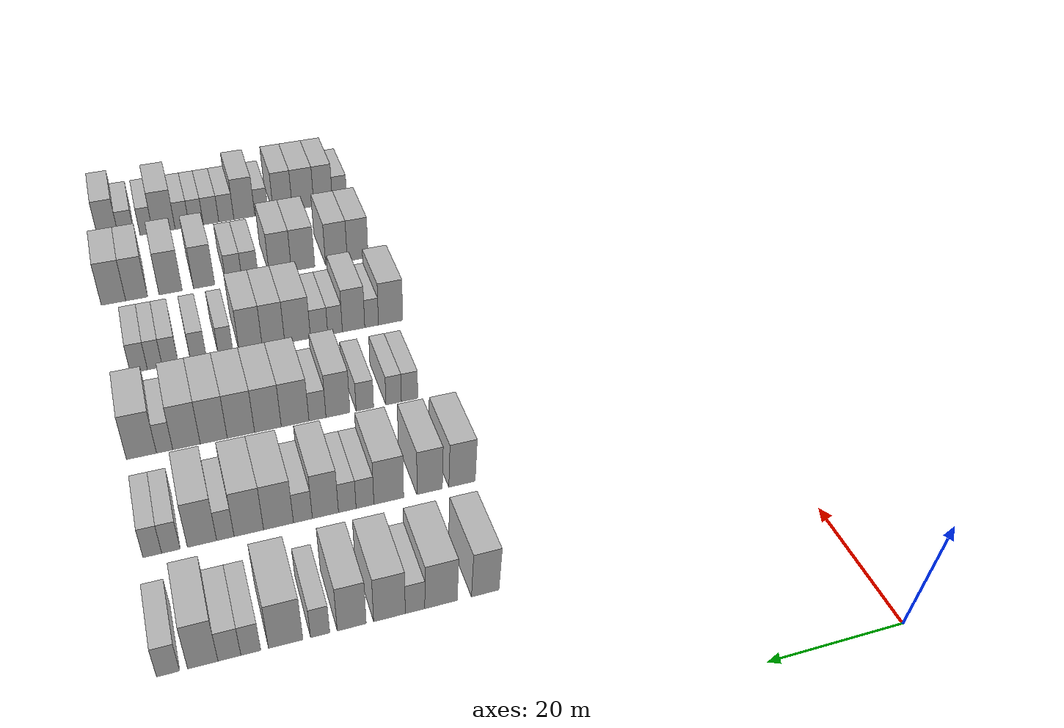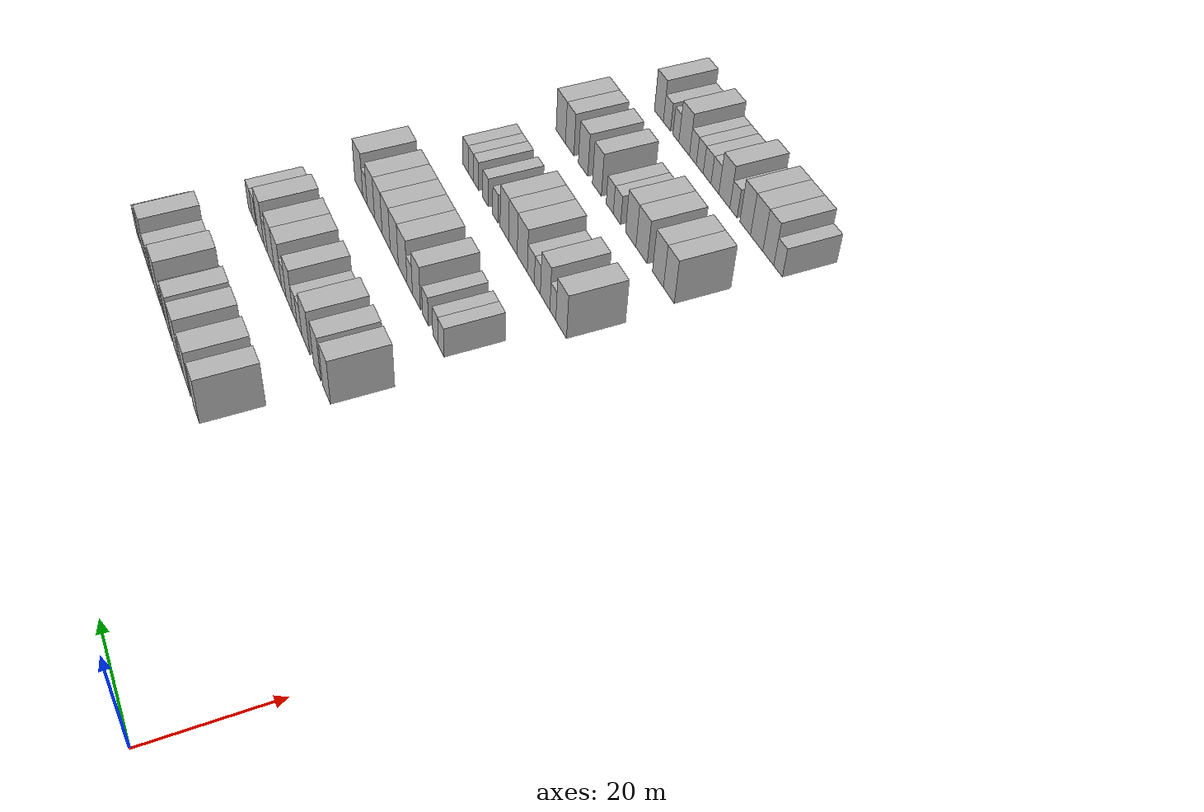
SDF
<sdf version="1.6">
 <world name="default">
  <model name="building_91">
   <static>1</static>
   <pose>25.0000 50.7786 0 0.000000 0.000000 0.000000</pose>
   <link name="link">
    <pose>0 0 4.50 0 0 0</pose>
    <collision name="collision"><geometry><box><size>10.0000 3.8769 9.0000</size></box></geometry></collision>
    <visual name="visual">
     <cast_shadows>0</cast_shadows>
     <geometry><box><size>10.0000 3.8769 9.0000</size></box></geometry>
     <material>
      <script>
       <uri>model://HANNAS_wall/materials/scripts</uri>
       <uri>model://HANNAS_wall/materials/textures</uri>
       <name>vrc/HANNAS_wall</name>
      </script>
     </material>
    </visual>
   </link>
  </model>
  <model name="building_92">
   <static>1</static>
   <pose>25.0000 56.9669 0 0.000000 0.000000 0.000000</pose>
   <link name="link">
    <pose>0 0 4.50 0 0 0</pose>
    <collision name="collision"><geometry><box><size>10.0000 4.4996 9.0000</size></box></geometry></collision>
    <visual name="visual">
     <cast_shadows>0</cast_shadows>
     <geometry><box><size>10.0000 4.4996 9.0000</size></box></geometry>
     <material>
      <script>
       <uri>model://HANNAS_wall/materials/scripts</uri>
       <uri>model://HANNAS_wall/materials/textures</uri>
       <name>vrc/HANNAS_wall</name>
      </script>
     </material>
    </visual>
   </link>
  </model>
  <model name="building_93">
   <static>1</static>
   <pose>25.0000 60.5590 0 0.000000 0.000000 0.000000</pose>
   <link name="link">
    <pose>0 0 3.00 0 0 0</pose>
    <collision name="collision"><geometry><box><size>10.0000 2.6848 6.0000</size></box></geometry></collision>
    <visual name="visual">
     <cast_shadows>0</cast_shadows>
     <geometry><box><size>10.0000 2.6848 6.0000</size></box></geometry>
     <material>
      <script>
       <uri>model://HANNAS_wall/materials/scripts</uri>
       <uri>model://HANNAS_wall/materials/textures</uri>
       <name>vrc/HANNAS_wall</name>
      </script>
     </material>
    </visual>
   </link>
  </model>
  <model name="building_94">
   <static>1</static>
   <pose>25.0000 64.0474 0 0.000000 0.000000 0.000000</pose>
   <link name="link">
    <pose>0 0 4.50 0 0 0</pose>
    <collision name="collision"><geometry><box><size>10.0000 4.2919 9.0000</size></box></geometry></collision>
    <visual name="visual">
     <cast_shadows>0</cast_shadows>
     <geometry><box><size>10.0000 4.2919 9.0000</size></box></geometry>
     <material>
      <script>
       <uri>model://HANNAS_wall/materials/scripts</uri>
       <uri>model://HANNAS_wall/materials/textures</uri>
       <name>vrc/HANNAS_wall</name>
      </script>
     </material>
    </visual>
   </link>
  </model>
  <model name="building_95">
   <static>1</static>
   <pose>25.0000 69.1278 0 0.000000 0.000000 0.000000</pose>
   <link name="link">
    <pose>0 0 4.50 0 0 0</pose>
    <collision name="collision"><geometry><box><size>10.0000 3.8688 9.0000</size></box></geometry></collision>
    <visual name="visual">
     <cast_shadows>0</cast_shadows>
     <geometry><box><size>10.0000 3.8688 9.0000</size></box></geometry>
     <material>
      <script>
       <uri>model://HANNAS_wall/materials/scripts</uri>
       <uri>model://HANNAS_wall/materials/textures</uri>
       <name>vrc/HANNAS_wall</name>
      </script>
     </material>
    </visual>
   </link>
  </model>
  <model name="building_96">
   <static>1</static>
   <pose>25.0000 73.3292 0 0.000000 0.000000 0.000000</pose>
   <link name="link">
    <pose>0 0 3.00 0 0 0</pose>
    <collision name="collision"><geometry><box><size>10.0000 2.5341 6.0000</size></box></geometry></collision>
    <visual name="visual">
     <cast_shadows>0</cast_shadows>
     <geometry><box><size>10.0000 2.5341 6.0000</size></box></geometry>
     <material>
      <script>
       <uri>model://HANNAS_wall/materials/scripts</uri>
       <uri>model://HANNAS_wall/materials/textures</uri>
       <name>vrc/HANNAS_wall</name>
      </script>
     </material>
    </visual>
   </link>
  </model>
  <model name="building_97">
   <static>1</static>
   <pose>25.0000 77.8396 0 0.000000 0.000000 0.000000</pose>
   <link name="link">
    <pose>0 0 4.50 0 0 0</pose>
    <collision name="collision"><geometry><box><size>10.0000 4.4866 9.0000</size></box></geometry></collision>
    <visual name="visual">
     <cast_shadows>0</cast_shadows>
     <geometry><box><size>10.0000 4.4866 9.0000</size></box></geometry>
     <material>
      <script>
       <uri>model://HANNAS_wall/materials/scripts</uri>
       <uri>model://HANNAS_wall/materials/textures</uri>
       <name>vrc/HANNAS_wall</name>
      </script>
     </material>
    </visual>
   </link>
  </model>
  <model name="building_98">
   <static>1</static>
   <pose>25.0000 82.3588 0 0.000000 0.000000 0.000000</pose>
   <link name="link">
    <pose>0 0 3.00 0 0 0</pose>
    <collision name="collision"><geometry><box><size>10.0000 2.5518 6.0000</size></box></geometry></collision>
    <visual name="visual">
     <cast_shadows>0</cast_shadows>
     <geometry><box><size>10.0000 2.5518 6.0000</size></box></geometry>
     <material>
      <script>
       <uri>model://HANNAS_wall/materials/scripts</uri>
       <uri>model://HANNAS_wall/materials/textures</uri>
       <name>vrc/HANNAS_wall</name>
      </script>
     </material>
    </visual>
   </link>
  </model>
  <model name="building_99">
   <static>1</static>
   <pose>25.0000 85.0927 0 0.000000 0.000000 0.000000</pose>
   <link name="link">
    <pose>0 0 3.00 0 0 0</pose>
    <collision name="collision"><geometry><box><size>10.0000 2.9160 6.0000</size></box></geometry></collision>
    <visual name="visual">
     <cast_shadows>0</cast_shadows>
     <geometry><box><size>10.0000 2.9160 6.0000</size></box></geometry>
     <material>
      <script>
       <uri>model://HANNAS_wall/materials/scripts</uri>
       <uri>model://HANNAS_wall/materials/textures</uri>
       <name>vrc/HANNAS_wall</name>
      </script>
     </material>
    </visual>
   </link>
  </model>
  <model name="building_100">
   <static>1</static>
   <pose>25.0000 88.4662 0 0.000000 0.000000 0.000000</pose>
   <link name="link">
    <pose>0 0 4.50 0 0 0</pose>
    <collision name="collision"><geometry><box><size>10.0000 3.8309 9.0000</size></box></geometry></collision>
    <visual name="visual">
     <cast_shadows>0</cast_shadows>
     <geometry><box><size>10.0000 3.8309 9.0000</size></box></geometry>
     <material>
      <script>
       <uri>model://HANNAS_wall/materials/scripts</uri>
       <uri>model://HANNAS_wall/materials/textures</uri>
       <name>vrc/HANNAS_wall</name>
      </script>
     </material>
    </visual>
   </link>
  </model>
  <model name="building_101">
   <static>1</static>
   <pose>25.0000 92.8203 0 0.000000 0.000000 0.000000</pose>
   <link name="link">
    <pose>0 0 3.00 0 0 0</pose>
    <collision name="collision"><geometry><box><size>10.0000 2.8774 6.0000</size></box></geometry></collision>
    <visual name="visual">
     <cast_shadows>0</cast_shadows>
     <geometry><box><size>10.0000 2.8774 6.0000</size></box></geometry>
     <material>
      <script>
       <uri>model://HANNAS_wall/materials/scripts</uri>
       <uri>model://HANNAS_wall/materials/textures</uri>
       <name>vrc/HANNAS_wall</name>
      </script>
     </material>
    </visual>
   </link>
  </model>
  <model name="building_254">
   <static>1</static>
   <pose>44.0000 47.7651 0 0.000000 0.000000 0.000000</pose>
   <link name="link">
    <pose>0 0 4.50 0 0 0</pose>
    <collision name="collision"><geometry><box><size>10.0000 4.0599 9.0000</size></box></geometry></collision>
    <visual name="visual">
     <cast_shadows>0</cast_shadows>
     <geometry><box><size>10.0000 4.0599 9.0000</size></box></geometry>
     <material>
      <script>
       <uri>model://HANNAS_wall/materials/scripts</uri>
       <uri>model://HANNAS_wall/materials/textures</uri>
       <name>vrc/HANNAS_wall</name>
      </script>
     </material>
    </visual>
   </link>
  </model>
  <model name="building_255">
   <static>1</static>
   <pose>44.0000 52.7390 0 0.000000 0.000000 0.000000</pose>
   <link name="link">
    <pose>0 0 4.50 0 0 0</pose>
    <collision name="collision"><geometry><box><size>10.0000 3.8878 9.0000</size></box></geometry></collision>
    <visual name="visual">
     <cast_shadows>0</cast_shadows>
     <geometry><box><size>10.0000 3.8878 9.0000</size></box></geometry>
     <material>
      <script>
       <uri>model://HANNAS_wall/materials/scripts</uri>
       <uri>model://HANNAS_wall/materials/textures</uri>
       <name>vrc/HANNAS_wall</name>
      </script>
     </material>
    </visual>
   </link>
  </model>
  <model name="building_256">
   <static>1</static>
   <pose>44.0000 58.9108 0 0.000000 0.000000 0.000000</pose>
   <link name="link">
    <pose>0 0 4.50 0 0 0</pose>
    <collision name="collision"><geometry><box><size>10.0000 4.4558 9.0000</size></box></geometry></collision>
    <visual name="visual">
     <cast_shadows>0</cast_shadows>
     <geometry><box><size>10.0000 4.4558 9.0000</size></box></geometry>
     <material>
      <script>
       <uri>model://HANNAS_wall/materials/scripts</uri>
       <uri>model://HANNAS_wall/materials/textures</uri>
       <name>vrc/HANNAS_wall</name>
      </script>
     </material>
    </visual>
   </link>
  </model>
  <model name="building_257">
   <static>1</static>
   <pose>44.0000 62.4589 0 0.000000 0.000000 0.000000</pose>
   <link name="link">
    <pose>0 0 3.00 0 0 0</pose>
    <collision name="collision"><geometry><box><size>10.0000 2.6403 6.0000</size></box></geometry></collision>
    <visual name="visual">
     <cast_shadows>0</cast_shadows>
     <geometry><box><size>10.0000 2.6403 6.0000</size></box></geometry>
     <material>
      <script>
       <uri>model://HANNAS_wall/materials/scripts</uri>
       <uri>model://HANNAS_wall/materials/textures</uri>
       <name>vrc/HANNAS_wall</name>
      </script>
     </material>
    </visual>
   </link>
  </model>
  <model name="building_258">
   <static>1</static>
   <pose>44.0000 65.0782 0 0.000000 0.000000 0.000000</pose>
   <link name="link">
    <pose>0 0 3.00 0 0 0</pose>
    <collision name="collision"><geometry><box><size>10.0000 2.5983 6.0000</size></box></geometry></collision>
    <visual name="visual">
     <cast_shadows>0</cast_shadows>
     <geometry><box><size>10.0000 2.5983 6.0000</size></box></geometry>
     <material>
      <script>
       <uri>model://HANNAS_wall/materials/scripts</uri>
       <uri>model://HANNAS_wall/materials/textures</uri>
       <name>vrc/HANNAS_wall</name>
      </script>
     </material>
    </visual>
   </link>
  </model>
  <model name="building_259">
   <static>1</static>
   <pose>44.0000 68.2817 0 0.000000 0.000000 0.000000</pose>
   <link name="link">
    <pose>0 0 4.50 0 0 0</pose>
    <collision name="collision"><geometry><box><size>10.0000 3.8088 9.0000</size></box></geometry></collision>
    <visual name="visual">
     <cast_shadows>0</cast_shadows>
     <geometry><box><size>10.0000 3.8088 9.0000</size></box></geometry>
     <material>
      <script>
       <uri>model://HANNAS_wall/materials/scripts</uri>
       <uri>model://HANNAS_wall/materials/textures</uri>
       <name>vrc/HANNAS_wall</name>
      </script>
     </material>
    </visual>
   </link>
  </model>
  <model name="building_260">
   <static>1</static>
   <pose>44.0000 71.5533 0 0.000000 0.000000 0.000000</pose>
   <link name="link">
    <pose>0 0 3.00 0 0 0</pose>
    <collision name="collision"><geometry><box><size>10.0000 2.7343 6.0000</size></box></geometry></collision>
    <visual name="visual">
     <cast_shadows>0</cast_shadows>
     <geometry><box><size>10.0000 2.7343 6.0000</size></box></geometry>
     <material>
      <script>
       <uri>model://HANNAS_wall/materials/scripts</uri>
       <uri>model://HANNAS_wall/materials/textures</uri>
       <name>vrc/HANNAS_wall</name>
      </script>
     </material>
    </visual>
   </link>
  </model>
  <model name="building_261">
   <static>1</static>
   <pose>44.0000 75.0664 0 0.000000 0.000000 0.000000</pose>
   <link name="link">
    <pose>0 0 4.50 0 0 0</pose>
    <collision name="collision"><geometry><box><size>10.0000 4.2920 9.0000</size></box></geometry></collision>
    <visual name="visual">
     <cast_shadows>0</cast_shadows>
     <geometry><box><size>10.0000 4.2920 9.0000</size></box></geometry>
     <material>
      <script>
       <uri>model://HANNAS_wall/materials/scripts</uri>
       <uri>model://HANNAS_wall/materials/textures</uri>
       <name>vrc/HANNAS_wall</name>
      </script>
     </material>
    </visual>
   </link>
  </model>
  <model name="building_262">
   <static>1</static>
   <pose>44.0000 79.2994 0 0.000000 0.000000 0.000000</pose>
   <link name="link">
    <pose>0 0 4.50 0 0 0</pose>
    <collision name="collision"><geometry><box><size>10.0000 4.1741 9.0000</size></box></geometry></collision>
    <visual name="visual">
     <cast_shadows>0</cast_shadows>
     <geometry><box><size>10.0000 4.1741 9.0000</size></box></geometry>
     <material>
      <script>
       <uri>model://HANNAS_wall/materials/scripts</uri>
       <uri>model://HANNAS_wall/materials/textures</uri>
       <name>vrc/HANNAS_wall</name>
      </script>
     </material>
    </visual>
   </link>
  </model>
  <model name="building_263">
   <static>1</static>
   <pose>44.0000 82.6092 0 0.000000 0.000000 0.000000</pose>
   <link name="link">
    <pose>0 0 3.00 0 0 0</pose>
    <collision name="collision"><geometry><box><size>10.0000 2.4455 6.0000</size></box></geometry></collision>
    <visual name="visual">
     <cast_shadows>0</cast_shadows>
     <geometry><box><size>10.0000 2.4455 6.0000</size></box></geometry>
     <material>
      <script>
       <uri>model://HANNAS_wall/materials/scripts</uri>
       <uri>model://HANNAS_wall/materials/textures</uri>
       <name>vrc/HANNAS_wall</name>
      </script>
     </material>
    </visual>
   </link>
  </model>
  <model name="building_264">
   <static>1</static>
   <pose>44.0000 85.8700 0 0.000000 0.000000 0.000000</pose>
   <link name="link">
    <pose>0 0 4.50 0 0 0</pose>
    <collision name="collision"><geometry><box><size>10.0000 4.0760 9.0000</size></box></geometry></collision>
    <visual name="visual">
     <cast_shadows>0</cast_shadows>
     <geometry><box><size>10.0000 4.0760 9.0000</size></box></geometry>
     <material>
      <script>
       <uri>model://HANNAS_wall/materials/scripts</uri>
       <uri>model://HANNAS_wall/materials/textures</uri>
       <name>vrc/HANNAS_wall</name>
      </script>
     </material>
    </visual>
   </link>
  </model>
  <model name="building_265">
   <static>1</static>
   <pose>44.0000 90.1796 0 0.000000 0.000000 0.000000</pose>
   <link name="link">
    <pose>0 0 3.00 0 0 0</pose>
    <collision name="collision"><geometry><box><size>10.0000 2.5433 6.0000</size></box></geometry></collision>
    <visual name="visual">
     <cast_shadows>0</cast_shadows>
     <geometry><box><size>10.0000 2.5433 6.0000</size></box></geometry>
     <material>
      <script>
       <uri>model://HANNAS_wall/materials/scripts</uri>
       <uri>model://HANNAS_wall/materials/textures</uri>
       <name>vrc/HANNAS_wall</name>
      </script>
     </material>
    </visual>
   </link>
  </model>
  <model name="building_266">
   <static>1</static>
   <pose>44.0000 92.7269 0 0.000000 0.000000 0.000000</pose>
   <link name="link">
    <pose>0 0 3.00 0 0 0</pose>
    <collision name="collision"><geometry><box><size>10.0000 2.5513 6.0000</size></box></geometry></collision>
    <visual name="visual">
     <cast_shadows>0</cast_shadows>
     <geometry><box><size>10.0000 2.5513 6.0000</size></box></geometry>
     <material>
      <script>
       <uri>model://HANNAS_wall/materials/scripts</uri>
       <uri>model://HANNAS_wall/materials/textures</uri>
       <name>vrc/HANNAS_wall</name>
      </script>
     </material>
    </visual>
   </link>
  </model>
  <model name="building_424">
   <static>1</static>
   <pose>63.0000 50.2790 0 0.000000 0.000000 0.000000</pose>
   <link name="link">
    <pose>0 0 3.00 0 0 0</pose>
    <collision name="collision"><geometry><box><size>10.0000 2.6736 6.0000</size></box></geometry></collision>
    <visual name="visual">
     <cast_shadows>0</cast_shadows>
     <geometry><box><size>10.0000 2.6736 6.0000</size></box></geometry>
     <material>
      <script>
       <uri>model://HANNAS_wall/materials/scripts</uri>
       <uri>model://HANNAS_wall/materials/textures</uri>
       <name>vrc/HANNAS_wall</name>
      </script>
     </material>
    </visual>
   </link>
  </model>
  <model name="building_425">
   <static>1</static>
   <pose>63.0000 52.8921 0 0.000000 0.000000 0.000000</pose>
   <link name="link">
    <pose>0 0 3.00 0 0 0</pose>
    <collision name="collision"><geometry><box><size>10.0000 2.5526 6.0000</size></box></geometry></collision>
    <visual name="visual">
     <cast_shadows>0</cast_shadows>
     <geometry><box><size>10.0000 2.5526 6.0000</size></box></geometry>
     <material>
      <script>
       <uri>model://HANNAS_wall/materials/scripts</uri>
       <uri>model://HANNAS_wall/materials/textures</uri>
       <name>vrc/HANNAS_wall</name>
      </script>
     </material>
    </visual>
   </link>
  </model>
  <model name="building_426">
   <static>1</static>
   <pose>63.0000 57.5868 0 0.000000 0.000000 0.000000</pose>
   <link name="link">
    <pose>0 0 3.00 0 0 0</pose>
    <collision name="collision"><geometry><box><size>10.0000 2.8367 6.0000</size></box></geometry></collision>
    <visual name="visual">
     <cast_shadows>0</cast_shadows>
     <geometry><box><size>10.0000 2.8367 6.0000</size></box></geometry>
     <material>
      <script>
       <uri>model://HANNAS_wall/materials/scripts</uri>
       <uri>model://HANNAS_wall/materials/textures</uri>
       <name>vrc/HANNAS_wall</name>
      </script>
     </material>
    </visual>
   </link>
  </model>
  <model name="building_427">
   <static>1</static>
   <pose>63.0000 61.9306 0 0.000000 0.000000 0.000000</pose>
   <link name="link">
    <pose>0 0 4.50 0 0 0</pose>
    <collision name="collision"><geometry><box><size>10.0000 3.8510 9.0000</size></box></geometry></collision>
    <visual name="visual">
     <cast_shadows>0</cast_shadows>
     <geometry><box><size>10.0000 3.8510 9.0000</size></box></geometry>
     <material>
      <script>
       <uri>model://HANNAS_wall/materials/scripts</uri>
       <uri>model://HANNAS_wall/materials/textures</uri>
       <name>vrc/HANNAS_wall</name>
      </script>
     </material>
    </visual>
   </link>
  </model>
  <model name="building_428">
   <static>1</static>
   <pose>63.0000 65.2110 0 0.000000 0.000000 0.000000</pose>
   <link name="link">
    <pose>0 0 3.00 0 0 0</pose>
    <collision name="collision"><geometry><box><size>10.0000 2.7098 6.0000</size></box></geometry></collision>
    <visual name="visual">
     <cast_shadows>0</cast_shadows>
     <geometry><box><size>10.0000 2.7098 6.0000</size></box></geometry>
     <material>
      <script>
       <uri>model://HANNAS_wall/materials/scripts</uri>
       <uri>model://HANNAS_wall/materials/textures</uri>
       <name>vrc/HANNAS_wall</name>
      </script>
     </material>
    </visual>
   </link>
  </model>
  <model name="building_429">
   <static>1</static>
   <pose>63.0000 68.7492 0 0.000000 0.000000 0.000000</pose>
   <link name="link">
    <pose>0 0 4.50 0 0 0</pose>
    <collision name="collision"><geometry><box><size>10.0000 4.3666 9.0000</size></box></geometry></collision>
    <visual name="visual">
     <cast_shadows>0</cast_shadows>
     <geometry><box><size>10.0000 4.3666 9.0000</size></box></geometry>
     <material>
      <script>
       <uri>model://HANNAS_wall/materials/scripts</uri>
       <uri>model://HANNAS_wall/materials/textures</uri>
       <name>vrc/HANNAS_wall</name>
      </script>
     </material>
    </visual>
   </link>
  </model>
  <model name="building_430">
   <static>1</static>
   <pose>63.0000 73.0215 0 0.000000 0.000000 0.000000</pose>
   <link name="link">
    <pose>0 0 4.50 0 0 0</pose>
    <collision name="collision"><geometry><box><size>10.0000 4.1780 9.0000</size></box></geometry></collision>
    <visual name="visual">
     <cast_shadows>0</cast_shadows>
     <geometry><box><size>10.0000 4.1780 9.0000</size></box></geometry>
     <material>
      <script>
       <uri>model://HANNAS_wall/materials/scripts</uri>
       <uri>model://HANNAS_wall/materials/textures</uri>
       <name>vrc/HANNAS_wall</name>
      </script>
     </material>
    </visual>
   </link>
  </model>
  <model name="building_431">
   <static>1</static>
   <pose>63.0000 77.2236 0 0.000000 0.000000 0.000000</pose>
   <link name="link">
    <pose>0 0 4.50 0 0 0</pose>
    <collision name="collision"><geometry><box><size>10.0000 4.2261 9.0000</size></box></geometry></collision>
    <visual name="visual">
     <cast_shadows>0</cast_shadows>
     <geometry><box><size>10.0000 4.2261 9.0000</size></box></geometry>
     <material>
      <script>
       <uri>model://HANNAS_wall/materials/scripts</uri>
       <uri>model://HANNAS_wall/materials/textures</uri>
       <name>vrc/HANNAS_wall</name>
      </script>
     </material>
    </visual>
   </link>
  </model>
  <model name="building_432">
   <static>1</static>
   <pose>63.0000 81.4025 0 0.000000 0.000000 0.000000</pose>
   <link name="link">
    <pose>0 0 4.50 0 0 0</pose>
    <collision name="collision"><geometry><box><size>10.0000 4.1318 9.0000</size></box></geometry></collision>
    <visual name="visual">
     <cast_shadows>0</cast_shadows>
     <geometry><box><size>10.0000 4.1318 9.0000</size></box></geometry>
     <material>
      <script>
       <uri>model://HANNAS_wall/materials/scripts</uri>
       <uri>model://HANNAS_wall/materials/textures</uri>
       <name>vrc/HANNAS_wall</name>
      </script>
     </material>
    </visual>
   </link>
  </model>
  <model name="building_433">
   <static>1</static>
   <pose>63.0000 85.5457 0 0.000000 0.000000 0.000000</pose>
   <link name="link">
    <pose>0 0 4.50 0 0 0</pose>
    <collision name="collision"><geometry><box><size>10.0000 4.1544 9.0000</size></box></geometry></collision>
    <visual name="visual">
     <cast_shadows>0</cast_shadows>
     <geometry><box><size>10.0000 4.1544 9.0000</size></box></geometry>
     <material>
      <script>
       <uri>model://HANNAS_wall/materials/scripts</uri>
       <uri>model://HANNAS_wall/materials/textures</uri>
       <name>vrc/HANNAS_wall</name>
      </script>
     </material>
    </visual>
   </link>
  </model>
  <model name="building_434">
   <static>1</static>
   <pose>63.0000 88.8454 0 0.000000 0.000000 0.000000</pose>
   <link name="link">
    <pose>0 0 3.00 0 0 0</pose>
    <collision name="collision"><geometry><box><size>10.0000 2.4452 6.0000</size></box></geometry></collision>
    <visual name="visual">
     <cast_shadows>0</cast_shadows>
     <geometry><box><size>10.0000 2.4452 6.0000</size></box></geometry>
     <material>
      <script>
       <uri>model://HANNAS_wall/materials/scripts</uri>
       <uri>model://HANNAS_wall/materials/textures</uri>
       <name>vrc/HANNAS_wall</name>
      </script>
     </material>
    </visual>
   </link>
  </model>
  <model name="building_435">
   <static>1</static>
   <pose>63.0000 92.3019 0 0.000000 0.000000 0.000000</pose>
   <link name="link">
    <pose>0 0 4.50 0 0 0</pose>
    <collision name="collision"><geometry><box><size>10.0000 4.4677 9.0000</size></box></geometry></collision>
    <visual name="visual">
     <cast_shadows>0</cast_shadows>
     <geometry><box><size>10.0000 4.4677 9.0000</size></box></geometry>
     <material>
      <script>
       <uri>model://HANNAS_wall/materials/scripts</uri>
       <uri>model://HANNAS_wall/materials/textures</uri>
       <name>vrc/HANNAS_wall</name>
      </script>
     </material>
    </visual>
   </link>
  </model>
  <model name="building_599">
   <static>1</static>
   <pose>82.0000 48.1548 0 0.000000 0.000000 0.000000</pose>
   <link name="link">
    <pose>0 0 4.50 0 0 0</pose>
    <collision name="collision"><geometry><box><size>10.0000 4.2765 9.0000</size></box></geometry></collision>
    <visual name="visual">
     <cast_shadows>0</cast_shadows>
     <geometry><box><size>10.0000 4.2765 9.0000</size></box></geometry>
     <material>
      <script>
       <uri>model://HANNAS_wall/materials/scripts</uri>
       <uri>model://HANNAS_wall/materials/textures</uri>
       <name>vrc/HANNAS_wall</name>
      </script>
     </material>
    </visual>
   </link>
  </model>
  <model name="building_600">
   <static>1</static>
   <pose>82.0000 51.5030 0 0.000000 0.000000 0.000000</pose>
   <link name="link">
    <pose>0 0 3.00 0 0 0</pose>
    <collision name="collision"><geometry><box><size>10.0000 2.4199 6.0000</size></box></geometry></collision>
    <visual name="visual">
     <cast_shadows>0</cast_shadows>
     <geometry><box><size>10.0000 2.4199 6.0000</size></box></geometry>
     <material>
      <script>
       <uri>model://HANNAS_wall/materials/scripts</uri>
       <uri>model://HANNAS_wall/materials/textures</uri>
       <name>vrc/HANNAS_wall</name>
      </script>
     </material>
    </visual>
   </link>
  </model>
  <model name="building_601">
   <static>1</static>
   <pose>82.0000 54.6792 0 0.000000 0.000000 0.000000</pose>
   <link name="link">
    <pose>0 0 4.50 0 0 0</pose>
    <collision name="collision"><geometry><box><size>10.0000 3.9326 9.0000</size></box></geometry></collision>
    <visual name="visual">
     <cast_shadows>0</cast_shadows>
     <geometry><box><size>10.0000 3.9326 9.0000</size></box></geometry>
     <material>
      <script>
       <uri>model://HANNAS_wall/materials/scripts</uri>
       <uri>model://HANNAS_wall/materials/textures</uri>
       <name>vrc/HANNAS_wall</name>
      </script>
     </material>
    </visual>
   </link>
  </model>
  <model name="building_602">
   <static>1</static>
   <pose>82.0000 57.9189 0 0.000000 0.000000 0.000000</pose>
   <link name="link">
    <pose>0 0 3.00 0 0 0</pose>
    <collision name="collision"><geometry><box><size>10.0000 2.5468 6.0000</size></box></geometry></collision>
    <visual name="visual">
     <cast_shadows>0</cast_shadows>
     <geometry><box><size>10.0000 2.5468 6.0000</size></box></geometry>
     <material>
      <script>
       <uri>model://HANNAS_wall/materials/scripts</uri>
       <uri>model://HANNAS_wall/materials/textures</uri>
       <name>vrc/HANNAS_wall</name>
      </script>
     </material>
    </visual>
   </link>
  </model>
  <model name="building_603">
   <static>1</static>
   <pose>82.0000 60.6855 0 0.000000 0.000000 0.000000</pose>
   <link name="link">
    <pose>0 0 3.00 0 0 0</pose>
    <collision name="collision"><geometry><box><size>10.0000 2.9863 6.0000</size></box></geometry></collision>
    <visual name="visual">
     <cast_shadows>0</cast_shadows>
     <geometry><box><size>10.0000 2.9863 6.0000</size></box></geometry>
     <material>
      <script>
       <uri>model://HANNAS_wall/materials/scripts</uri>
       <uri>model://HANNAS_wall/materials/textures</uri>
       <name>vrc/HANNAS_wall</name>
      </script>
     </material>
    </visual>
   </link>
  </model>
  <model name="building_604">
   <static>1</static>
   <pose>82.0000 64.3859 0 0.000000 0.000000 0.000000</pose>
   <link name="link">
    <pose>0 0 4.50 0 0 0</pose>
    <collision name="collision"><geometry><box><size>10.0000 4.4144 9.0000</size></box></geometry></collision>
    <visual name="visual">
     <cast_shadows>0</cast_shadows>
     <geometry><box><size>10.0000 4.4144 9.0000</size></box></geometry>
     <material>
      <script>
       <uri>model://HANNAS_wall/materials/scripts</uri>
       <uri>model://HANNAS_wall/materials/textures</uri>
       <name>vrc/HANNAS_wall</name>
      </script>
     </material>
    </visual>
   </link>
  </model>
  <model name="building_605">
   <static>1</static>
   <pose>82.0000 68.5032 0 0.000000 0.000000 0.000000</pose>
   <link name="link">
    <pose>0 0 4.50 0 0 0</pose>
    <collision name="collision"><geometry><box><size>10.0000 3.8202 9.0000</size></box></geometry></collision>
    <visual name="visual">
     <cast_shadows>0</cast_shadows>
     <geometry><box><size>10.0000 3.8202 9.0000</size></box></geometry>
     <material>
      <script>
       <uri>model://HANNAS_wall/materials/scripts</uri>
       <uri>model://HANNAS_wall/materials/textures</uri>
       <name>vrc/HANNAS_wall</name>
      </script>
     </material>
    </visual>
   </link>
  </model>
  <model name="building_606">
   <static>1</static>
   <pose>82.0000 72.3622 0 0.000000 0.000000 0.000000</pose>
   <link name="link">
    <pose>0 0 4.50 0 0 0</pose>
    <collision name="collision"><geometry><box><size>10.0000 3.8979 9.0000</size></box></geometry></collision>
    <visual name="visual">
     <cast_shadows>0</cast_shadows>
     <geometry><box><size>10.0000 3.8979 9.0000</size></box></geometry>
     <material>
      <script>
       <uri>model://HANNAS_wall/materials/scripts</uri>
       <uri>model://HANNAS_wall/materials/textures</uri>
       <name>vrc/HANNAS_wall</name>
      </script>
     </material>
    </visual>
   </link>
  </model>
  <model name="building_607">
   <static>1</static>
   <pose>82.0000 76.5414 0 0.000000 0.000000 0.000000</pose>
   <link name="link">
    <pose>0 0 3.00 0 0 0</pose>
    <collision name="collision"><geometry><box><size>10.0000 2.4603 6.0000</size></box></geometry></collision>
    <visual name="visual">
     <cast_shadows>0</cast_shadows>
     <geometry><box><size>10.0000 2.4603 6.0000</size></box></geometry>
     <material>
      <script>
       <uri>model://HANNAS_wall/materials/scripts</uri>
       <uri>model://HANNAS_wall/materials/textures</uri>
       <name>vrc/HANNAS_wall</name>
      </script>
     </material>
    </visual>
   </link>
  </model>
  <model name="building_608">
   <static>1</static>
   <pose>82.0000 81.0878 0 0.000000 0.000000 0.000000</pose>
   <link name="link">
    <pose>0 0 3.00 0 0 0</pose>
    <collision name="collision"><geometry><box><size>10.0000 2.6326 6.0000</size></box></geometry></collision>
    <visual name="visual">
     <cast_shadows>0</cast_shadows>
     <geometry><box><size>10.0000 2.6326 6.0000</size></box></geometry>
     <material>
      <script>
       <uri>model://HANNAS_wall/materials/scripts</uri>
       <uri>model://HANNAS_wall/materials/textures</uri>
       <name>vrc/HANNAS_wall</name>
      </script>
     </material>
    </visual>
   </link>
  </model>
  <model name="building_609">
   <static>1</static>
   <pose>82.0000 85.7130 0 0.000000 0.000000 0.000000</pose>
   <link name="link">
    <pose>0 0 3.00 0 0 0</pose>
    <collision name="collision"><geometry><box><size>10.0000 2.6179 6.0000</size></box></geometry></collision>
    <visual name="visual">
     <cast_shadows>0</cast_shadows>
     <geometry><box><size>10.0000 2.6179 6.0000</size></box></geometry>
     <material>
      <script>
       <uri>model://HANNAS_wall/materials/scripts</uri>
       <uri>model://HANNAS_wall/materials/textures</uri>
       <name>vrc/HANNAS_wall</name>
      </script>
     </material>
    </visual>
   </link>
  </model>
  <model name="building_610">
   <static>1</static>
   <pose>82.0000 88.2322 0 0.000000 0.000000 0.000000</pose>
   <link name="link">
    <pose>0 0 3.00 0 0 0</pose>
    <collision name="collision"><geometry><box><size>10.0000 2.4204 6.0000</size></box></geometry></collision>
    <visual name="visual">
     <cast_shadows>0</cast_shadows>
     <geometry><box><size>10.0000 2.4204 6.0000</size></box></geometry>
     <material>
      <script>
       <uri>model://HANNAS_wall/materials/scripts</uri>
       <uri>model://HANNAS_wall/materials/textures</uri>
       <name>vrc/HANNAS_wall</name>
      </script>
     </material>
    </visual>
   </link>
  </model>
  <model name="building_611">
   <static>1</static>
   <pose>82.0000 90.8256 0 0.000000 0.000000 0.000000</pose>
   <link name="link">
    <pose>0 0 3.00 0 0 0</pose>
    <collision name="collision"><geometry><box><size>10.0000 2.7665 6.0000</size></box></geometry></collision>
    <visual name="visual">
     <cast_shadows>0</cast_shadows>
     <geometry><box><size>10.0000 2.7665 6.0000</size></box></geometry>
     <material>
      <script>
       <uri>model://HANNAS_wall/materials/scripts</uri>
       <uri>model://HANNAS_wall/materials/textures</uri>
       <name>vrc/HANNAS_wall</name>
      </script>
     </material>
    </visual>
   </link>
  </model>
  <model name="building_780">
   <static>1</static>
   <pose>101.0000 49.1758 0 0.000000 0.000000 0.000000</pose>
   <link name="link">
    <pose>0 0 4.50 0 0 0</pose>
    <collision name="collision"><geometry><box><size>10.0000 3.9490 9.0000</size></box></geometry></collision>
    <visual name="visual">
     <cast_shadows>0</cast_shadows>
     <geometry><box><size>10.0000 3.9490 9.0000</size></box></geometry>
     <material>
      <script>
       <uri>model://HANNAS_wall/materials/scripts</uri>
       <uri>model://HANNAS_wall/materials/textures</uri>
       <name>vrc/HANNAS_wall</name>
      </script>
     </material>
    </visual>
   </link>
  </model>
  <model name="building_781">
   <static>1</static>
   <pose>101.0000 53.1932 0 0.000000 0.000000 0.000000</pose>
   <link name="link">
    <pose>0 0 4.50 0 0 0</pose>
    <collision name="collision"><geometry><box><size>10.0000 4.0857 9.0000</size></box></geometry></collision>
    <visual name="visual">
     <cast_shadows>0</cast_shadows>
     <geometry><box><size>10.0000 4.0857 9.0000</size></box></geometry>
     <material>
      <script>
       <uri>model://HANNAS_wall/materials/scripts</uri>
       <uri>model://HANNAS_wall/materials/textures</uri>
       <name>vrc/HANNAS_wall</name>
      </script>
     </material>
    </visual>
   </link>
  </model>
  <model name="building_782">
   <static>1</static>
   <pose>101.0000 59.4094 0 0.000000 0.000000 0.000000</pose>
   <link name="link">
    <pose>0 0 4.50 0 0 0</pose>
    <collision name="collision"><geometry><box><size>10.0000 4.3468 9.0000</size></box></geometry></collision>
    <visual name="visual">
     <cast_shadows>0</cast_shadows>
     <geometry><box><size>10.0000 4.3468 9.0000</size></box></geometry>
     <material>
      <script>
       <uri>model://HANNAS_wall/materials/scripts</uri>
       <uri>model://HANNAS_wall/materials/textures</uri>
       <name>vrc/HANNAS_wall</name>
      </script>
     </material>
    </visual>
   </link>
  </model>
  <model name="building_783">
   <static>1</static>
   <pose>101.0000 63.6228 0 0.000000 0.000000 0.000000</pose>
   <link name="link">
    <pose>0 0 4.50 0 0 0</pose>
    <collision name="collision"><geometry><box><size>10.0000 4.0800 9.0000</size></box></geometry></collision>
    <visual name="visual">
     <cast_shadows>0</cast_shadows>
     <geometry><box><size>10.0000 4.0800 9.0000</size></box></geometry>
     <material>
      <script>
       <uri>model://HANNAS_wall/materials/scripts</uri>
       <uri>model://HANNAS_wall/materials/textures</uri>
       <name>vrc/HANNAS_wall</name>
      </script>
     </material>
    </visual>
   </link>
  </model>
  <model name="building_784">
   <static>1</static>
   <pose>101.0000 69.1441 0 0.000000 0.000000 0.000000</pose>
   <link name="link">
    <pose>0 0 3.00 0 0 0</pose>
    <collision name="collision"><geometry><box><size>10.0000 2.9626 6.0000</size></box></geometry></collision>
    <visual name="visual">
     <cast_shadows>0</cast_shadows>
     <geometry><box><size>10.0000 2.9626 6.0000</size></box></geometry>
     <material>
      <script>
       <uri>model://HANNAS_wall/materials/scripts</uri>
       <uri>model://HANNAS_wall/materials/textures</uri>
       <name>vrc/HANNAS_wall</name>
      </script>
     </material>
    </visual>
   </link>
  </model>
  <model name="building_785">
   <static>1</static>
   <pose>101.0000 72.0858 0 0.000000 0.000000 0.000000</pose>
   <link name="link">
    <pose>0 0 3.00 0 0 0</pose>
    <collision name="collision"><geometry><box><size>10.0000 2.9207 6.0000</size></box></geometry></collision>
    <visual name="visual">
     <cast_shadows>0</cast_shadows>
     <geometry><box><size>10.0000 2.9207 6.0000</size></box></geometry>
     <material>
      <script>
       <uri>model://HANNAS_wall/materials/scripts</uri>
       <uri>model://HANNAS_wall/materials/textures</uri>
       <name>vrc/HANNAS_wall</name>
      </script>
     </material>
    </visual>
   </link>
  </model>
  <model name="building_786">
   <static>1</static>
   <pose>101.0000 77.4431 0 0.000000 0.000000 0.000000</pose>
   <link name="link">
    <pose>0 0 4.50 0 0 0</pose>
    <collision name="collision"><geometry><box><size>10.0000 3.7940 9.0000</size></box></geometry></collision>
    <visual name="visual">
     <cast_shadows>0</cast_shadows>
     <geometry><box><size>10.0000 3.7940 9.0000</size></box></geometry>
     <material>
      <script>
       <uri>model://HANNAS_wall/materials/scripts</uri>
       <uri>model://HANNAS_wall/materials/textures</uri>
       <name>vrc/HANNAS_wall</name>
      </script>
     </material>
    </visual>
   </link>
  </model>
  <model name="building_787">
   <static>1</static>
   <pose>101.0000 83.3862 0 0.000000 0.000000 0.000000</pose>
   <link name="link">
    <pose>0 0 4.50 0 0 0</pose>
    <collision name="collision"><geometry><box><size>10.0000 4.0921 9.0000</size></box></geometry></collision>
    <visual name="visual">
     <cast_shadows>0</cast_shadows>
     <geometry><box><size>10.0000 4.0921 9.0000</size></box></geometry>
     <material>
      <script>
       <uri>model://HANNAS_wall/materials/scripts</uri>
       <uri>model://HANNAS_wall/materials/textures</uri>
       <name>vrc/HANNAS_wall</name>
      </script>
     </material>
    </visual>
   </link>
  </model>
  <model name="building_788">
   <static>1</static>
   <pose>101.0000 89.3349 0 0.000000 0.000000 0.000000</pose>
   <link name="link">
    <pose>0 0 4.50 0 0 0</pose>
    <collision name="collision"><geometry><box><size>10.0000 3.8053 9.0000</size></box></geometry></collision>
    <visual name="visual">
     <cast_shadows>0</cast_shadows>
     <geometry><box><size>10.0000 3.8053 9.0000</size></box></geometry>
     <material>
      <script>
       <uri>model://HANNAS_wall/materials/scripts</uri>
       <uri>model://HANNAS_wall/materials/textures</uri>
       <name>vrc/HANNAS_wall</name>
      </script>
     </material>
    </visual>
   </link>
  </model>
  <model name="building_789">
   <static>1</static>
   <pose>101.0000 93.3531 0 0.000000 0.000000 0.000000</pose>
   <link name="link">
    <pose>0 0 4.50 0 0 0</pose>
    <collision name="collision"><geometry><box><size>10.0000 4.2312 9.0000</size></box></geometry></collision>
    <visual name="visual">
     <cast_shadows>0</cast_shadows>
     <geometry><box><size>10.0000 4.2312 9.0000</size></box></geometry>
     <material>
      <script>
       <uri>model://HANNAS_wall/materials/scripts</uri>
       <uri>model://HANNAS_wall/materials/textures</uri>
       <name>vrc/HANNAS_wall</name>
      </script>
     </material>
    </visual>
   </link>
  </model>
  <model name="building_946">
   <static>1</static>
   <pose>120.0000 48.0554 0 0.000000 0.000000 0.000000</pose>
   <link name="link">
    <pose>0 0 3.00 0 0 0</pose>
    <collision name="collision"><geometry><box><size>10.0000 2.8825 6.0000</size></box></geometry></collision>
    <visual name="visual">
     <cast_shadows>0</cast_shadows>
     <geometry><box><size>10.0000 2.8825 6.0000</size></box></geometry>
     <material>
      <script>
       <uri>model://HANNAS_wall/materials/scripts</uri>
       <uri>model://HANNAS_wall/materials/textures</uri>
       <name>vrc/HANNAS_wall</name>
      </script>
     </material>
    </visual>
   </link>
  </model>
  <model name="building_947">
   <static>1</static>
   <pose>120.0000 51.3610 0 0.000000 0.000000 0.000000</pose>
   <link name="link">
    <pose>0 0 4.50 0 0 0</pose>
    <collision name="collision"><geometry><box><size>10.0000 3.7287 9.0000</size></box></geometry></collision>
    <visual name="visual">
     <cast_shadows>0</cast_shadows>
     <geometry><box><size>10.0000 3.7287 9.0000</size></box></geometry>
     <material>
      <script>
       <uri>model://HANNAS_wall/materials/scripts</uri>
       <uri>model://HANNAS_wall/materials/textures</uri>
       <name>vrc/HANNAS_wall</name>
      </script>
     </material>
    </visual>
   </link>
  </model>
  <model name="building_948">
   <static>1</static>
   <pose>120.0000 55.3677 0 0.000000 0.000000 0.000000</pose>
   <link name="link">
    <pose>0 0 4.50 0 0 0</pose>
    <collision name="collision"><geometry><box><size>10.0000 4.2846 9.0000</size></box></geometry></collision>
    <visual name="visual">
     <cast_shadows>0</cast_shadows>
     <geometry><box><size>10.0000 4.2846 9.0000</size></box></geometry>
     <material>
      <script>
       <uri>model://HANNAS_wall/materials/scripts</uri>
       <uri>model://HANNAS_wall/materials/textures</uri>
       <name>vrc/HANNAS_wall</name>
      </script>
     </material>
    </visual>
   </link>
  </model>
  <model name="building_949">
   <static>1</static>
   <pose>120.0000 59.3942 0 0.000000 0.000000 0.000000</pose>
   <link name="link">
    <pose>0 0 4.50 0 0 0</pose>
    <collision name="collision"><geometry><box><size>10.0000 3.7684 9.0000</size></box></geometry></collision>
    <visual name="visual">
     <cast_shadows>0</cast_shadows>
     <geometry><box><size>10.0000 3.7684 9.0000</size></box></geometry>
     <material>
      <script>
       <uri>model://HANNAS_wall/materials/scripts</uri>
       <uri>model://HANNAS_wall/materials/textures</uri>
       <name>vrc/HANNAS_wall</name>
      </script>
     </material>
    </visual>
   </link>
  </model>
  <model name="building_950">
   <static>1</static>
   <pose>120.0000 63.5909 0 0.000000 0.000000 0.000000</pose>
   <link name="link">
    <pose>0 0 3.00 0 0 0</pose>
    <collision name="collision"><geometry><box><size>10.0000 2.6250 6.0000</size></box></geometry></collision>
    <visual name="visual">
     <cast_shadows>0</cast_shadows>
     <geometry><box><size>10.0000 2.6250 6.0000</size></box></geometry>
     <material>
      <script>
       <uri>model://HANNAS_wall/materials/scripts</uri>
       <uri>model://HANNAS_wall/materials/textures</uri>
       <name>vrc/HANNAS_wall</name>
      </script>
     </material>
    </visual>
   </link>
  </model>
  <model name="building_951">
   <static>1</static>
   <pose>120.0000 66.9440 0 0.000000 0.000000 0.000000</pose>
   <link name="link">
    <pose>0 0 4.50 0 0 0</pose>
    <collision name="collision"><geometry><box><size>10.0000 4.0812 9.0000</size></box></geometry></collision>
    <visual name="visual">
     <cast_shadows>0</cast_shadows>
     <geometry><box><size>10.0000 4.0812 9.0000</size></box></geometry>
     <material>
      <script>
       <uri>model://HANNAS_wall/materials/scripts</uri>
       <uri>model://HANNAS_wall/materials/textures</uri>
       <name>vrc/HANNAS_wall</name>
      </script>
     </material>
    </visual>
   </link>
  </model>
  <model name="building_952">
   <static>1</static>
   <pose>120.0000 70.4448 0 0.000000 0.000000 0.000000</pose>
   <link name="link">
    <pose>0 0 3.00 0 0 0</pose>
    <collision name="collision"><geometry><box><size>10.0000 2.9203 6.0000</size></box></geometry></collision>
    <visual name="visual">
     <cast_shadows>0</cast_shadows>
     <geometry><box><size>10.0000 2.9203 6.0000</size></box></geometry>
     <material>
      <script>
       <uri>model://HANNAS_wall/materials/scripts</uri>
       <uri>model://HANNAS_wall/materials/textures</uri>
       <name>vrc/HANNAS_wall</name>
      </script>
     </material>
    </visual>
   </link>
  </model>
  <model name="building_953">
   <static>1</static>
   <pose>120.0000 73.3949 0 0.000000 0.000000 0.000000</pose>
   <link name="link">
    <pose>0 0 3.00 0 0 0</pose>
    <collision name="collision"><geometry><box><size>10.0000 2.9800 6.0000</size></box></geometry></collision>
    <visual name="visual">
     <cast_shadows>0</cast_shadows>
     <geometry><box><size>10.0000 2.9800 6.0000</size></box></geometry>
     <material>
      <script>
       <uri>model://HANNAS_wall/materials/scripts</uri>
       <uri>model://HANNAS_wall/materials/textures</uri>
       <name>vrc/HANNAS_wall</name>
      </script>
     </material>
    </visual>
   </link>
  </model>
  <model name="building_954">
   <static>1</static>
   <pose>120.0000 76.2292 0 0.000000 0.000000 0.000000</pose>
   <link name="link">
    <pose>0 0 3.00 0 0 0</pose>
    <collision name="collision"><geometry><box><size>10.0000 2.6885 6.0000</size></box></geometry></collision>
    <visual name="visual">
     <cast_shadows>0</cast_shadows>
     <geometry><box><size>10.0000 2.6885 6.0000</size></box></geometry>
     <material>
      <script>
       <uri>model://HANNAS_wall/materials/scripts</uri>
       <uri>model://HANNAS_wall/materials/textures</uri>
       <name>vrc/HANNAS_wall</name>
      </script>
     </material>
    </visual>
   </link>
  </model>
  <model name="building_955">
   <static>1</static>
   <pose>120.0000 78.9096 0 0.000000 0.000000 0.000000</pose>
   <link name="link">
    <pose>0 0 3.00 0 0 0</pose>
    <collision name="collision"><geometry><box><size>10.0000 2.6724 6.0000</size></box></geometry></collision>
    <visual name="visual">
     <cast_shadows>0</cast_shadows>
     <geometry><box><size>10.0000 2.6724 6.0000</size></box></geometry>
     <material>
      <script>
       <uri>model://HANNAS_wall/materials/scripts</uri>
       <uri>model://HANNAS_wall/materials/textures</uri>
       <name>vrc/HANNAS_wall</name>
      </script>
     </material>
    </visual>
   </link>
  </model>
  <model name="building_956">
   <static>1</static>
   <pose>120.0000 82.3483 0 0.000000 0.000000 0.000000</pose>
   <link name="link">
    <pose>0 0 4.50 0 0 0</pose>
    <collision name="collision"><geometry><box><size>10.0000 4.2051 9.0000</size></box></geometry></collision>
    <visual name="visual">
     <cast_shadows>0</cast_shadows>
     <geometry><box><size>10.0000 4.2051 9.0000</size></box></geometry>
     <material>
      <script>
       <uri>model://HANNAS_wall/materials/scripts</uri>
       <uri>model://HANNAS_wall/materials/textures</uri>
       <name>vrc/HANNAS_wall</name>
      </script>
     </material>
    </visual>
   </link>
  </model>
  <model name="building_957">
   <static>1</static>
   <pose>120.0000 85.6553 0 0.000000 0.000000 0.000000</pose>
   <link name="link">
    <pose>0 0 3.00 0 0 0</pose>
    <collision name="collision"><geometry><box><size>10.0000 2.4087 6.0000</size></box></geometry></collision>
    <visual name="visual">
     <cast_shadows>0</cast_shadows>
     <geometry><box><size>10.0000 2.4087 6.0000</size></box></geometry>
     <material>
      <script>
       <uri>model://HANNAS_wall/materials/scripts</uri>
       <uri>model://HANNAS_wall/materials/textures</uri>
       <name>vrc/HANNAS_wall</name>
      </script>
     </material>
    </visual>
   </link>
  </model>
  <model name="building_958">
   <static>1</static>
   <pose>120.0000 89.3190 0 0.000000 0.000000 0.000000</pose>
   <link name="link">
    <pose>0 0 3.00 0 0 0</pose>
    <collision name="collision"><geometry><box><size>10.0000 2.9187 6.0000</size></box></geometry></collision>
    <visual name="visual">
     <cast_shadows>0</cast_shadows>
     <geometry><box><size>10.0000 2.9187 6.0000</size></box></geometry>
     <material>
      <script>
       <uri>model://HANNAS_wall/materials/scripts</uri>
       <uri>model://HANNAS_wall/materials/textures</uri>
       <name>vrc/HANNAS_wall</name>
      </script>
     </material>
    </visual>
   </link>
  </model>
  <model name="building_959">
   <static>1</static>
   <pose>120.0000 92.6508 0 0.000000 0.000000 0.000000</pose>
   <link name="link">
    <pose>0 0 4.50 0 0 0</pose>
    <collision name="collision"><geometry><box><size>10.0000 3.7450 9.0000</size></box></geometry></collision>
    <visual name="visual">
     <cast_shadows>0</cast_shadows>
     <geometry><box><size>10.0000 3.7450 9.0000</size></box></geometry>
     <material>
      <script>
       <uri>model://HANNAS_wall/materials/scripts</uri>
       <uri>model://HANNAS_wall/materials/textures</uri>
       <name>vrc/HANNAS_wall</name>
      </script>
     </material>
    </visual>
   </link>
  </model>
 </world>
</sdf>
